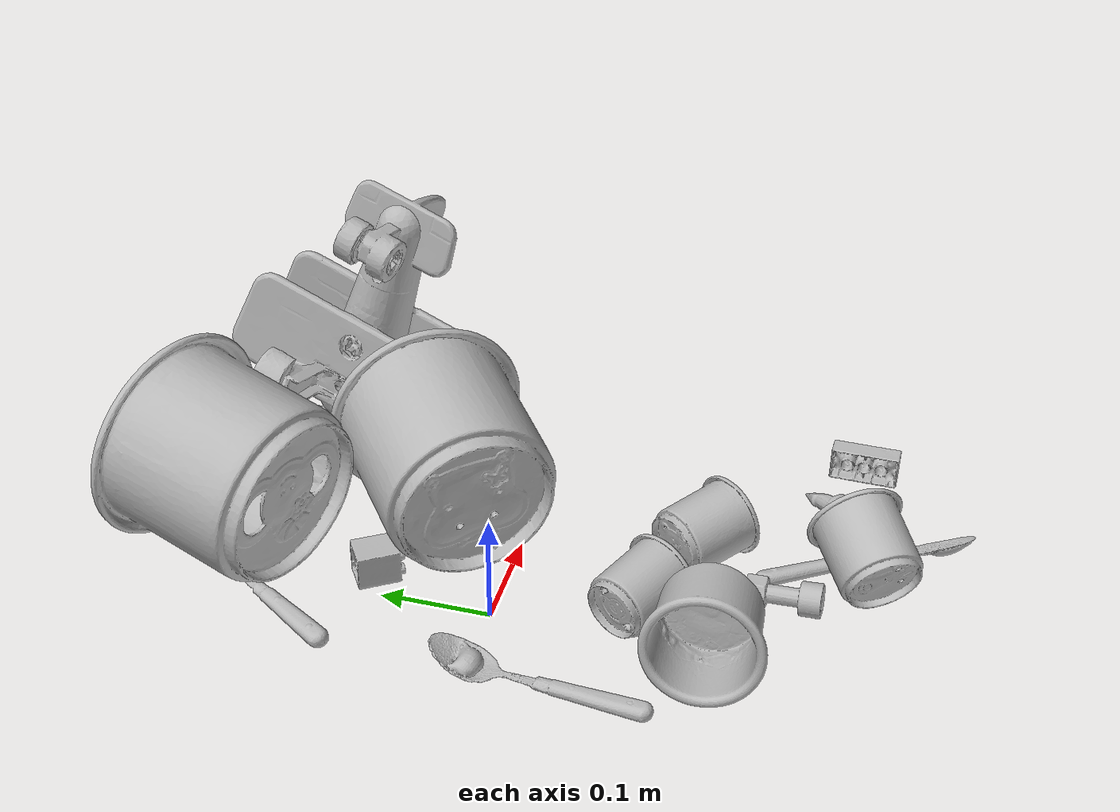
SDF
<sdf version="1.4">
  <world name="default">
    <light name="light1" type="point">
      <pose>0 0 1 0 0 0</pose>
      <diffuse>3 3 3 1</diffuse>
      <specular>3 3 3 1</specular>
    </light>
    <light name="light2" type="point">
      <pose>0 0.5 2 0 0 0</pose>
      <diffuse>1 1 1 1</diffuse>
      <specular>1 1 1 1</specular>
    </light>
    <light name="light3" type="point">
      <pose>0 0.5 2 0 0 0</pose>
      <diffuse>3 3 3 1</diffuse>
      <specular>3 3 3 1</specular>
    </light>
    <scene>
      <ambient>0.7 0.7 0.7</ambient>
    </scene>
    <model name="cup1">
      <link name="link_cup1">
        <collision name="default">
          <geometry>
            <mesh>
              <uri>model://d_cups/collision_meshes/collision.obj</uri>
              <scale>1.0 1.0 1.0</scale>
            </mesh>
          </geometry>
          <surface>
            <friction>
              <ode>
                <mu>0.5</mu>
                <mu2>0.5</mu2>
              </ode>
            </friction>
          <contact>
        <ode>
            <max_vel>0</max_vel>
            <min_depth>0.0001</min_depth>
            <kp>1e8</kp>
        </ode>
    </contact></surface>
        </collision>
        <visual name="default">
          <geometry>
            <mesh>
              <uri>model://d_cups/visual_meshes/visual.dae</uri>
              <scale>1.0 1.0 1.0</scale>
            </mesh>
          </geometry>
        </visual>
        <inertial>
          <mass>0.02583918906748295</mass>
          <pose>0.0008068039314821362 0.001911739120259881 -0.0022666507866233587 0.24011637128749466 -0.2471028358176743 0.5942765290496752</pose>
          <inertia>
            <ixx>2.1633481e-05</ixx>
            <iyy>2.1570875e-05</iyy>
            <izz>1.9581978e-05</izz>
            <ixy>0</ixy>
            <ixz>0</ixz>
            <iyz>0</iyz>
          </inertia>
        </inertial>
      </link>
      <pose>0.027608022093772888 -0.1221962720155716 0.0324711911380291 -1.4717686191371158 0.254146673130362 -2.0365148140590783</pose>
    </model>
    <model name="silverware1">
      <link name="link_silverware1">
        <collision name="default">
          <geometry>
            <mesh>
              <uri>model://fork/collision_meshes/collision.obj</uri>
              <scale>1.0 1.0 1.0</scale>
            </mesh>
          </geometry>
          <surface>
            <friction>
              <ode>
                <mu>0.5</mu>
                <mu2>0.5</mu2>
              </ode>
            </friction>
          <contact>
        <ode>
            <max_vel>0</max_vel>
            <min_depth>0.0001</min_depth>
            <kp>1e8</kp>
        </ode>
    </contact></surface>
        </collision>
        <visual name="default">
          <geometry>
            <mesh>
              <uri>model://fork/visual_meshes/visual.dae</uri>
              <scale>1.0 1.0 1.0</scale>
            </mesh>
          </geometry>
        </visual>
        <inertial>
          <mass>0.019409121945500374</mass>
          <pose>-0.02957003004848957 0.00046588227269239724 0.0003218860365450382 -0.013551247621251511 -0.010977829980421018 0.014453895491116085</pose>
          <inertia>
            <ixx>6.8039935e-07</ixx>
            <iyy>5.0671635e-05</iyy>
            <izz>5.097597e-05</izz>
            <ixy>0</ixy>
            <ixz>0</ixz>
            <iyz>0</iyz>
          </inertia>
        </inertial>
      </link>
      <pose>-0.02540595456957817 0.2028958946466446 0.005238065496087074 0.015110600907829421 0.05077698937552277 0.9860322374246223</pose>
    </model>
    <model name="cup2">
      <link name="link_cup2">
        <collision name="default">
          <geometry>
            <mesh>
              <uri>model://e_cups/collision_meshes/collision.obj</uri>
              <scale>1.0 1.0 1.0</scale>
            </mesh>
          </geometry>
          <surface>
            <friction>
              <ode>
                <mu>0.5</mu>
                <mu2>0.5</mu2>
              </ode>
            </friction>
          <contact>
        <ode>
            <max_vel>0</max_vel>
            <min_depth>0.0001</min_depth>
            <kp>1e8</kp>
        </ode>
    </contact></surface>
        </collision>
        <visual name="default">
          <geometry>
            <mesh>
              <uri>model://e_cups/visual_meshes/visual.dae</uri>
              <scale>1.0 1.0 1.0</scale>
            </mesh>
          </geometry>
        </visual>
        <inertial>
          <mass>0.044056184589862823</mass>
          <pose>0.0011355748865753412 0.0028797839768230915 -0.0038829699624329805 0.6952404811842238 0.0876797234541652 -0.5235249298074676</pose>
          <inertia>
            <ixx>3.8846523e-05</ixx>
            <iyy>4.060018e-05</iyy>
            <izz>3.714177e-05</izz>
            <ixy>0</ixy>
            <ixz>0</ixz>
            <iyz>0</iyz>
          </inertia>
        </inertial>
      </link>
      <pose>0.11957357823848724 -0.16104307770729065 0.034876711666584015 -1.479911840722922 0.4385240163947973 -2.2091987699029056</pose>
    </model>
    <model name="silverware2">
      <link name="link_silverware2">
        <collision name="default">
          <geometry>
            <mesh>
              <uri>model://knife/collision_meshes/collision.obj</uri>
              <scale>1.0 1.0 1.0</scale>
            </mesh>
          </geometry>
          <surface>
            <friction>
              <ode>
                <mu>0.5</mu>
                <mu2>0.5</mu2>
              </ode>
            </friction>
          <contact>
        <ode>
            <max_vel>0</max_vel>
            <min_depth>0.0001</min_depth>
            <kp>1e8</kp>
        </ode>
    </contact></surface>
        </collision>
        <visual name="default">
          <geometry>
            <mesh>
              <uri>model://knife/visual_meshes/visual.dae</uri>
              <scale>1.0 1.0 1.0</scale>
            </mesh>
          </geometry>
        </visual>
        <inertial>
          <mass>0.018338654190301895</mass>
          <pose>-0.02378525212407112 0.00152751209679991 5.062017953605391e-05 0.07305878484845407 0.017248414361503102 -0.007409825003193847</pose>
          <inertia>
            <ixx>5.2052525e-07</ixx>
            <iyy>7.045415e-05</iyy>
            <izz>7.062178e-05</izz>
            <ixy>0</ixy>
            <ixz>0</ixz>
            <iyz>0</iyz>
          </inertia>
        </inertial>
      </link>
      <pose>0.14974473416805267 -0.3073141276836395 0.008167572319507599 -0.305135582336337 -0.00775302345834897 -1.0386617988393292</pose>
    </model>
    <model name="cup3">
      <link name="link_cup3">
        <collision name="default">
          <geometry>
            <mesh>
              <uri>model://g_cups/collision_meshes/collision.obj</uri>
              <scale>1.0 1.0 1.0</scale>
            </mesh>
          </geometry>
          <surface>
            <friction>
              <ode>
                <mu>0.5</mu>
                <mu2>0.5</mu2>
              </ode>
            </friction>
          <contact>
        <ode>
            <max_vel>0</max_vel>
            <min_depth>0.0001</min_depth>
            <kp>1e8</kp>
        </ode>
    </contact></surface>
        </collision>
        <visual name="default">
          <geometry>
            <mesh>
              <uri>model://g_cups/visual_meshes/visual.dae</uri>
              <scale>1.0 1.0 1.0</scale>
            </mesh>
          </geometry>
        </visual>
        <inertial>
          <mass>0.07798270881175995</mass>
          <pose>-0.0007946274126879871 -4.206407902529463e-05 -0.0021329382434487343 -0.21383467808934026 -0.31409923984197585 0.31123390815877217</pose>
          <inertia>
            <ixx>9.102333e-05</ixx>
            <iyy>9.0713715e-05</iyy>
            <izz>9.428446e-05</izz>
            <ixy>0</ixy>
            <ixz>0</ixz>
            <iyz>0</iyz>
          </inertia>
        </inertial>
      </link>
      <pose>0.11593887954950333 -0.3067476451396942 0.04415958747267723 -0.9561021925031791 0.9923311004826999 -0.5053150735799447</pose>
    </model>
    <model name="silverware3">
      <link name="link_silverware3">
        <collision name="default">
          <geometry>
            <mesh>
              <uri>model://spoon/collision_meshes/collision.obj</uri>
              <scale>1.0 1.0 1.0</scale>
            </mesh>
          </geometry>
          <surface>
            <friction>
              <ode>
                <mu>0.5</mu>
                <mu2>0.5</mu2>
              </ode>
            </friction>
          <contact>
        <ode>
            <max_vel>0</max_vel>
            <min_depth>0.0001</min_depth>
            <kp>1e8</kp>
        </ode>
    </contact></surface>
        </collision>
        <visual name="default">
          <geometry>
            <mesh>
              <uri>model://spoon/visual_meshes/visual.dae</uri>
              <scale>1.0 1.0 1.0</scale>
            </mesh>
          </geometry>
        </visual>
        <inertial>
          <mass>0.03767607361078262</mass>
          <pose>-0.005526314023882151 -0.00160341733135283 -0.0007271650829352438 0.035216427360727776 -0.03906582911385382 0.006150613897789847</pose>
          <inertia>
            <ixx>2.095604e-06</ixx>
            <iyy>0.00014335623</iyy>
            <izz>0.00014438969</izz>
            <ixy>0</ixy>
            <ixz>0</ixz>
            <iyz>0</iyz>
          </inertia>
        </inertial>
      </link>
      <pose>-0.07753453403711319 -0.06207337602972984 0.008385262452065945 0.006731759932752816 0.02689297969839062 1.4349301670266055</pose>
    </model>
    <model name="cup4">
      <link name="link_cup4">
        <collision name="default">
          <geometry>
            <mesh>
              <uri>model://i_cups/collision_meshes/collision.obj</uri>
              <scale>2.0 2.0 2.0</scale>
            </mesh>
          </geometry>
          <surface>
            <friction>
              <ode>
                <mu>0.5</mu>
                <mu2>0.5</mu2>
              </ode>
            </friction>
          <contact>
        <ode>
            <max_vel>0</max_vel>
            <min_depth>0.0001</min_depth>
            <kp>1e8</kp>
        </ode>
    </contact></surface>
        </collision>
        <visual name="default">
          <geometry>
            <mesh>
              <uri>model://i_cups/visual_meshes/visual.dae</uri>
              <scale>2.0 2.0 2.0</scale>
            </mesh>
          </geometry>
        </visual>
        <inertial>
          <mass>0.5538490414619446</mass>
          <pose>0.00022480632469523698 0.00033594807609915733 -0.0017158057307824492 -0.028982964625507153 -0.039873324075769 -0.3459146585522926</pose>
          <inertia>
            <ixx>0.003067248</ixx>
            <iyy>0.003094273</iyy>
            <izz>0.0034281453</izz>
            <ixy>0</ixy>
            <ixz>0</ixz>
            <iyz>0</iyz>
          </inertia>
        </inertial>
      </link>
      <pose>0.03016752004623413 0.24366483092308044 0.08974716812372208 1.4421514996585487 0.24866428340049895 2.7711734768526326</pose>
    </model>
    <model name="cup41">
      <link name="link_cup41">
        <collision name="default">
          <geometry>
            <mesh>
              <uri>model://cup_small/collision_meshes/collision.obj</uri>
              <scale>1.0 1.0 1.0</scale>
            </mesh>
          </geometry>
          <surface>
            <friction>
              <ode>
                <mu>0.5</mu>
                <mu2>0.5</mu2>
              </ode>
            </friction>
          <contact>
        <ode>
            <max_vel>0</max_vel>
            <min_depth>0.0001</min_depth>
            <kp>1e8</kp>
        </ode>
    </contact></surface>
        </collision>
        <visual name="default">
          <geometry>
            <mesh>
              <uri>model://cup_small/visual_meshes/visual.dae</uri>
              <scale>1.0 1.0 1.0</scale>
            </mesh>
          </geometry>
        </visual>
        <inertial>
          <mass>0.014494861476123333</mass>
          <pose>0.000104824714071583 -0.0003377838584128767 -0.010742826387286186 -0.01149312034772668 -0.015280288652376739 -0.5058210166411498</pose>
          <inertia>
            <ixx>8.534352e-06</ixx>
            <iyy>8.578376e-06</iyy>
            <izz>3.853286e-06</izz>
            <ixy>0</ixy>
            <ixz>0</ixz>
            <iyz>0</iyz>
          </inertia>
        </inertial>
      </link>
      <pose>0.21716687083244324 0.10824286937713623 0.022127315402030945 -1.4024679896248458 0.2503156744763176 -2.9732036004970617</pose>
    </model>
    <model name="cup5">
      <link name="link_cup5">
        <collision name="default">
          <geometry>
            <mesh>
              <uri>model://h_cups/collision_meshes/collision.obj</uri>
              <scale>2.0 2.0 2.0</scale>
            </mesh>
          </geometry>
          <surface>
            <friction>
              <ode>
                <mu>0.5</mu>
                <mu2>0.5</mu2>
              </ode>
            </friction>
          <contact>
        <ode>
            <max_vel>0</max_vel>
            <min_depth>0.0001</min_depth>
            <kp>1e8</kp>
        </ode>
    </contact></surface>
        </collision>
        <visual name="default">
          <geometry>
            <mesh>
              <uri>model://h_cups/visual_meshes/visual.dae</uri>
              <scale>2.0 2.0 2.0</scale>
            </mesh>
          </geometry>
        </visual>
        <inertial>
          <mass>0.5365790128707886</mass>
          <pose>-5.406028139987029e-05 0.00046037189895287156 -0.0036810787860304117 -0.02436222281077587 0.06545240855648493 0.12885003891433794</pose>
          <inertia>
            <ixx>0.002771868</ixx>
            <iyy>0.0027387904</iyy>
            <izz>0.0029069292</izz>
            <ixy>0</ixy>
            <ixz>0</ixz>
            <iyz>0</iyz>
          </inertia>
        </inertial>
      </link>
      <pose>0.10150481015443802 0.06643041968345642 0.08435380458831787 1.1571982764010946 -1.319821834126554 2.613290238424476</pose>
    </model>
    <model name="cup51">
      <link name="link_cup51">
        <collision name="default">
          <geometry>
            <mesh>
              <uri>model://j_cups/collision_meshes/collision.obj</uri>
              <scale>1.0 1.0 1.0</scale>
            </mesh>
          </geometry>
          <surface>
            <friction>
              <ode>
                <mu>0.5</mu>
                <mu2>0.5</mu2>
              </ode>
            </friction>
          <contact>
        <ode>
            <max_vel>0</max_vel>
            <min_depth>0.0001</min_depth>
            <kp>1e8</kp>
        </ode>
    </contact></surface>
        </collision>
        <visual name="default">
          <geometry>
            <mesh>
              <uri>model://j_cups/visual_meshes/visual.dae</uri>
              <scale>1.0 1.0 1.0</scale>
            </mesh>
          </geometry>
        </visual>
        <inertial>
          <mass>0.08643309026956558</mass>
          <pose>0.0006164878141134977 0.000539897009730339 -0.0013479007175192237 0.030303582878034346 0.03757999590477698 0.4386876701083768</pose>
          <inertia>
            <ixx>0.00012691108</ixx>
            <iyy>0.00012823076</iyy>
            <izz>0.00014630218</izz>
            <ixy>0</ixy>
            <ixz>0</ixz>
            <iyz>0</iyz>
          </inertia>
        </inertial>
      </link>
      <pose>-0.021387869492173195 -0.18957489728927612 0.046979133039712906 -1.4392557301931175 -0.13582551875639717 1.5971856140670901</pose>
    </model>
    <model name="toy1">
      <link name="link_toy1">
        <collision name="default">
          <geometry>
            <mesh>
              <uri>model://f_lego_duplo/collision_meshes/collision.obj</uri>
              <scale>1.0 1.0 1.0</scale>
            </mesh>
          </geometry>
          <surface>
            <friction>
              <ode>
                <mu>0.5</mu>
                <mu2>0.5</mu2>
              </ode>
            </friction>
          <contact>
        <ode>
            <max_vel>0</max_vel>
            <min_depth>0.0001</min_depth>
            <kp>1e8</kp>
        </ode>
    </contact></surface>
        </collision>
        <visual name="default">
          <geometry>
            <mesh>
              <uri>model://f_lego_duplo/visual_meshes/visual.dae</uri>
              <scale>1.0 1.0 1.0</scale>
            </mesh>
          </geometry>
        </visual>
        <inertial>
          <mass>0.03726755082607269</mass>
          <pose>2.3694148694630712e-05 0.00013393144763540477 0.0018837880343198776 0.029838475432906467 -0.014425202105620092 -0.6756589304715467</pose>
          <inertia>
            <ixx>7.874838e-06</ixx>
            <iyy>7.944995e-06</iyy>
            <izz>6.8356926e-06</izz>
            <ixy>0</ixy>
            <ixz>0</ixz>
            <iyz>0</iyz>
          </inertia>
        </inertial>
      </link>
      <pose>0.02613724023103714 0.11130179464817047 0.016207026317715645 1.5790497010494065 8.05858456925392e-05 0.5814794963862969</pose>
    </model>
    <model name="toy2">
      <link name="link_toy2">
        <collision name="default">
          <geometry>
            <mesh>
              <uri>model://a_toy_airplane/collision_meshes/collision.obj</uri>
              <scale>1.0 1.0 1.0</scale>
            </mesh>
          </geometry>
          <surface>
            <friction>
              <ode>
                <mu>0.5</mu>
                <mu2>0.5</mu2>
              </ode>
            </friction>
          <contact>
        <ode>
            <max_vel>0</max_vel>
            <min_depth>0.0001</min_depth>
            <kp>1e8</kp>
        </ode>
    </contact></surface>
        </collision>
        <visual name="default">
          <geometry>
            <mesh>
              <uri>model://a_toy_airplane/visual_meshes/visual.dae</uri>
              <scale>1.0 1.0 1.0</scale>
            </mesh>
          </geometry>
        </visual>
        <inertial>
          <mass>2.8230273723602295</mass>
          <pose>0.025165094062685966 -0.003707324154675007 -0.0011962448479607701 -0.012016973205606891 -0.14663498091084715 0.004149146833454428</pose>
          <inertia>
            <ixx>0.010251767</ixx>
            <iyy>0.014938904</iyy>
            <izz>0.017491622</izz>
            <ixy>0</ixy>
            <ixz>0</ixz>
            <iyz>0</iyz>
          </inertia>
        </inertial>
      </link>
      <pose>0.2415083348751068 0.18895134329795837 0.13218919932842255 2.4033789167757043 1.1591785201728755 2.2304927898651457</pose>
    </model>
    <model name="toy3">
      <link name="link_toy3">
        <collision name="default">
          <geometry>
            <mesh>
              <uri>model://e_toy_airplane/collision_meshes/collision.obj</uri>
              <scale>1.0 1.0 1.0</scale>
            </mesh>
          </geometry>
          <surface>
            <friction>
              <ode>
                <mu>0.5</mu>
                <mu2>0.5</mu2>
              </ode>
            </friction>
          <contact>
        <ode>
            <max_vel>0</max_vel>
            <min_depth>0.0001</min_depth>
            <kp>1e8</kp>
        </ode>
    </contact></surface>
        </collision>
        <visual name="default">
          <geometry>
            <mesh>
              <uri>model://e_toy_airplane/visual_meshes/visual.dae</uri>
              <scale>1.0 1.0 1.0</scale>
            </mesh>
          </geometry>
        </visual>
        <inertial>
          <mass>0.018226178362965584</mass>
          <pose>0.00011740501213353127 -2.2482903659692965e-05 -0.011187204159796238 0.005518473613481416 0.009228340672948143 0.1504115676354622</pose>
          <inertia>
            <ixx>5.5628384e-06</ixx>
            <iyy>5.505933e-06</iyy>
            <izz>1.6718515e-06</izz>
            <ixy>0</ixy>
            <ixz>0</ixz>
            <iyz>0</iyz>
          </inertia>
        </inertial>
      </link>
      <pose>0.2192634791135788 -0.26473429799079895 0.010300119407474995 -2.993983417493293 -1.2784738477422262 0.5262414333843588</pose>
    </model>
    <model name="toy4">
      <link name="link_toy4">
        <collision name="default">
          <geometry>
            <mesh>
              <uri>model://c_toy_airplane/collision_meshes/collision.obj</uri>
              <scale>1.0 1.0 1.0</scale>
            </mesh>
          </geometry>
          <surface>
            <friction>
              <ode>
                <mu>0.5</mu>
                <mu2>0.5</mu2>
              </ode>
            </friction>
          <contact>
        <ode>
            <max_vel>0</max_vel>
            <min_depth>0.0001</min_depth>
            <kp>1e8</kp>
        </ode>
    </contact></surface>
        </collision>
        <visual name="default">
          <geometry>
            <mesh>
              <uri>model://c_toy_airplane/visual_meshes/visual.dae</uri>
              <scale>1.0 1.0 1.0</scale>
            </mesh>
          </geometry>
        </visual>
        <inertial>
          <mass>0.025432955473661423</mass>
          <pose>-0.00023024249821901321 -4.429159048413567e-07 -0.006080531049519777 -0.006192114712999555 -0.016797950833505656 0.7654545807195076</pose>
          <inertia>
            <ixx>1.1678292e-05</ixx>
            <iyy>1.1645335e-05</iyy>
            <izz>2.7418316e-06</izz>
            <ixy>0</ixy>
            <ixz>0</ixz>
            <iyz>0</iyz>
          </inertia>
        </inertial>
      </link>
      <pose>0.07411646097898483 -0.24144044518470764 0.014215917326509953 -1.7880833772297866 1.3247663429426035 -0.24177537762291587</pose>
    </model>
    <model name="toy5">
      <link name="link_toy5">
        <collision name="default">
          <geometry>
            <mesh>
              <uri>model://c_lego_duplo/collision_meshes/collision.obj</uri>
              <scale>1.0 1.0 1.0</scale>
            </mesh>
          </geometry>
          <surface>
            <friction>
              <ode>
                <mu>0.5</mu>
                <mu2>0.5</mu2>
              </ode>
            </friction>
          <contact>
        <ode>
            <max_vel>0</max_vel>
            <min_depth>0.0001</min_depth>
            <kp>1e8</kp>
        </ode>
    </contact></surface>
        </collision>
        <visual name="default">
          <geometry>
            <mesh>
              <uri>model://c_lego_duplo/visual_meshes/visual.dae</uri>
              <scale>1.0 1.0 1.0</scale>
            </mesh>
          </geometry>
        </visual>
        <inertial>
          <mass>0.03308485820889473</mass>
          <pose>0.00031645988929085433 0.00019464598153717816 0.0010453154100105166 -0.011520788894510418 0.005900092683279709 0.031100331745055027</pose>
          <inertia>
            <ixx>1.2731672e-05</ixx>
            <iyy>4.066954e-06</iyy>
            <izz>1.4878268e-05</izz>
            <ixy>0</ixy>
            <ixz>0</ixz>
            <iyz>0</iyz>
          </inertia>
        </inertial>
      </link>
      <pose>0.28751271963119507 -0.29081106185913086 0.016402937471866608 -1.4176645171739493 1.5444108963146688 -1.462223915095257</pose>
    </model>
  <physics type="ode">
      <max_contacts>50</max_contacts>
      <ode>
        <solver>
          <type>quick</type>
          <iters>75</iters>
        </solver>
        <constraints>
          <contact_max_correcting_vel>0</contact_max_correcting_vel>
          <contact_surface_layer>0</contact_surface_layer>
        </constraints>
      </ode>
    </physics></world>
</sdf>
